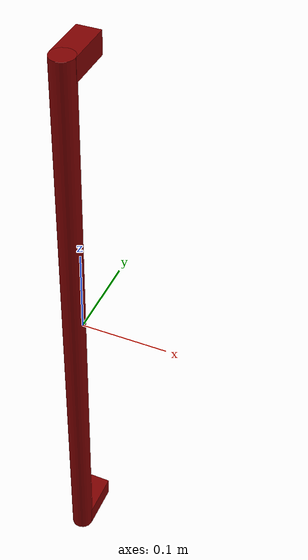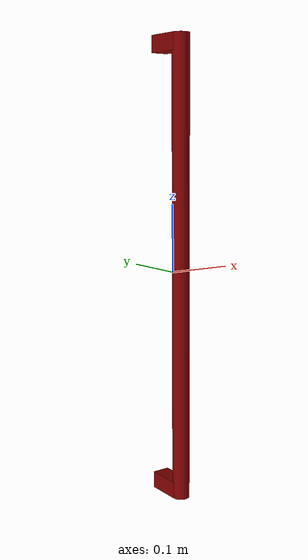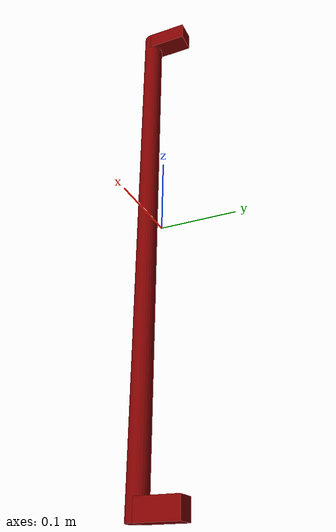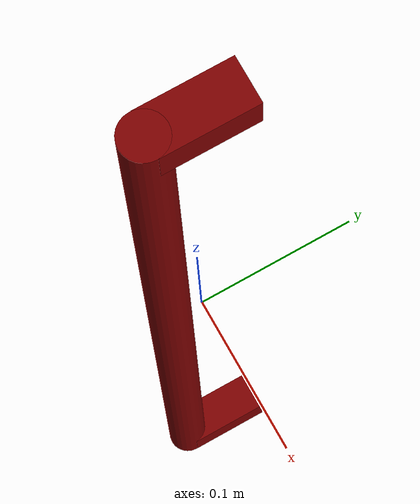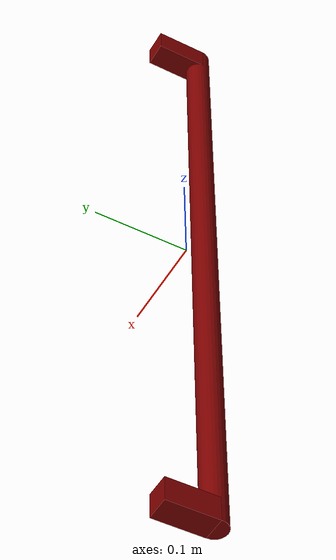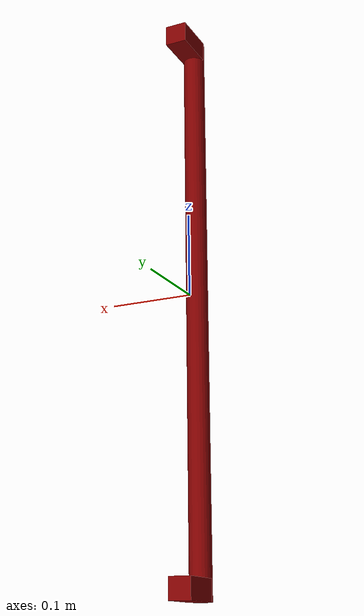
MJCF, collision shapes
<?xml version='1.0' encoding='UTF-8'?>
<mujoco model="model">
  <option timestep="0.002" gravity="0.0 0.0 -9.81"/>
  <compiler angle="radian"/>
  <asset>
    <mesh file="visuals/CabinetHandle028.obj" name="CabinetHandle028_vis"/>
    <texture file="visuals/T_BC001.png" name="tex" type="2d"/>
    <material name="mat" rgba="1 1 1 1.0" texture="tex" shininess="0.4472135901451111" specular="0.3103448502657381"/>
  </asset>
  <default>
    <default class="visual">
      <geom conaffinity="0" contype="0" group="1" type="mesh"/>
    </default>
    <default class="collision">
      <geom group="0" rgba="0.5 0 0 0.5" density="1.0" solref="0.004 1" solimp="0.998 0.998 0.001"/>
    </default>
    <default class="spawn">
      <geom group="0" rgba="1 1 1 0.5" contype="0" conaffinity="0"/>
      <site group="0" rgba="1 1 1 0.5"/>
    </default>
    <default class="region">
      <geom group="1" conaffinity="0" contype="0" rgba="0 1 0 0" mass="0"/>
    </default>
  </default>
  <worldbody>
    <body>
      <body name="object">
        <geom mesh="CabinetHandle028_vis" type="mesh" solimp="0.998 0.998 0.001" solref="0.001 1" friction="0.95 0.3 0.1" class="visual" material="mat"/>
        <geom type="cylinder" pos="9.919691365212202e-06 -0.020833196118474007 7.5852673035115e-05" size="0.01295510958880186 0.3440512716770172" quat="1.0 0.0 0.0 0.0" class="collision"/>
        <geom type="box" pos="1.4916430473022046e-06 0.006751904729753733 0.3315466642379761" size="0.013045414350926876 0.026863574981689453 0.012541929259896278" quat="1.0 0.0 0.0 0.0" class="collision"/>
        <geom type="box" pos="1.4916430473022046e-06 0.006751904729753733 -0.33153897523880005" size="0.013045414350926876 0.026863574981689453 0.012541929259896278" quat="1.0 0.0 0.0 0.0" class="collision"/>
        <geom class="region" name="reg_main" type="box" pos="2.3283064365386963e-10 0.0 0.0" size="0.013806637212634087 0.03452802619338036 0.344915194272995"/>
      </body>
    </body>
  </worldbody>
  <actuator/>
</mujoco>
